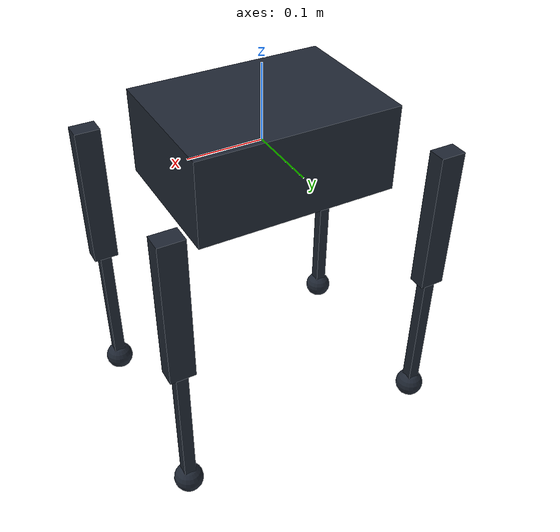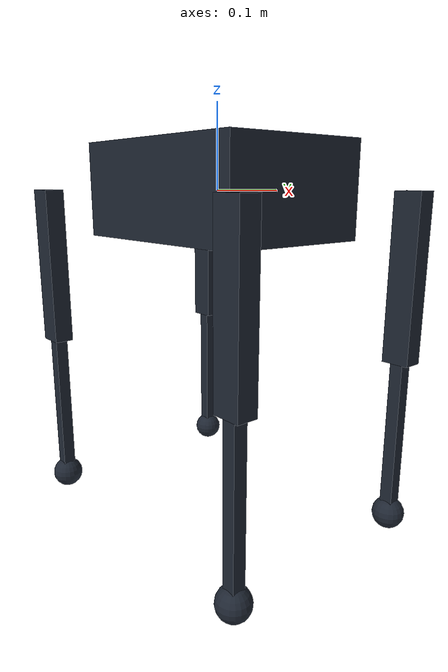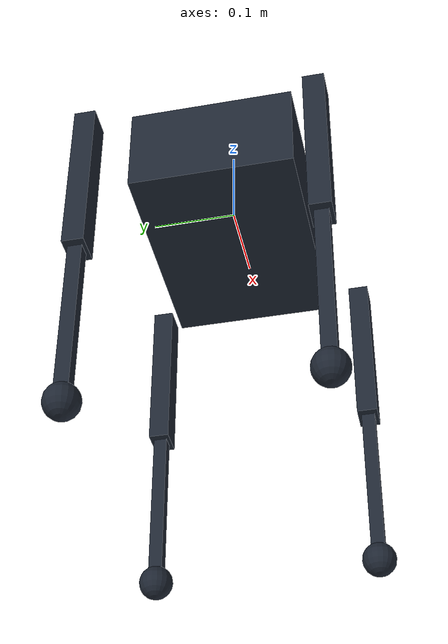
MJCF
<mujoco model="a1_description">
  <compiler angle="radian"/>

  <worldbody>
    <geom size="0.1335 0.097 0.057" type="box" rgba="0.12 0.15 0.2 1"/>
    <body name="FR_hip" pos="0.183 -0.047 0">
      <inertial pos="-0.003311 -0.000635 3.1e-05" quat="0.507528 0.506268 0.491507 0.494499" mass="0.696" diaginertia="0.000807752 0.00055293 0.000468983"/>
      <joint name="FR_hip_joint" pos="0 0 0" axis="1 0 0" range="-0.802851 0.802851" actuatorfrcrange="-20 20"/>
      <body name="FR_thigh" pos="0 -0.08505 0">
        <inertial pos="-0.003237 0.022327 -0.027326" quat="0.999125 -0.00256393 -0.0409531 -0.00806091" mass="1.013" diaginertia="0.00555739 0.00513936 0.00133944"/>
        <joint name="FR_thigh_joint" pos="0 0 0" axis="0 1 0" range="-1.0472 4.18879" actuatorfrcrange="-55 55"/>
        <geom size="0.1 0.01225 0.017" pos="0 0 -0.1" quat="0.707107 0 0.707107 0" type="box" rgba="0.12 0.15 0.2 1"/>
        <body name="FR_calf" pos="0 0 -0.2">
          <inertial pos="0.00472659 0 -0.131975" quat="0.706886 0.017653 0.017653 0.706886" mass="0.226" diaginertia="0.00340344 0.00339393 3.54834e-05"/>
          <joint name="FR_calf_joint" pos="0 0 0" axis="0 1 0" range="-2.69653 -0.916298" actuatorfrcrange="-55 55"/>
          <geom size="0.1 0.008 0.008" pos="0 0 -0.1" quat="0.707107 0 0.707107 0" type="box" rgba="0.12 0.15 0.2 1"/>
          <geom size="0.02" pos="0 0 -0.2" rgba="0.12 0.15 0.2 1"/>
        </body>
      </body>
    </body>
    <body name="FL_hip" pos="0.183 0.047 0">
      <inertial pos="-0.003311 0.000635 3.1e-05" quat="0.494499 0.491507 0.506268 0.507528" mass="0.696" diaginertia="0.000807752 0.00055293 0.000468983"/>
      <joint name="FL_hip_joint" pos="0 0 0" axis="1 0 0" range="-0.802851 0.802851" actuatorfrcrange="-20 20"/>
      <body name="FL_thigh" pos="0 0.08505 0">
        <inertial pos="-0.003237 -0.022327 -0.027326" quat="0.999125 0.00256393 -0.0409531 0.00806091" mass="1.013" diaginertia="0.00555739 0.00513936 0.00133944"/>
        <joint name="FL_thigh_joint" pos="0 0 0" axis="0 1 0" range="-1.0472 4.18879" actuatorfrcrange="-55 55"/>
        <geom size="0.1 0.01225 0.017" pos="0 0 -0.1" quat="0.707107 0 0.707107 0" type="box" rgba="0.12 0.15 0.2 1"/>
        <body name="FL_calf" pos="0 0 -0.2">
          <inertial pos="0.00472659 0 -0.131975" quat="0.706886 0.017653 0.017653 0.706886" mass="0.226" diaginertia="0.00340344 0.00339393 3.54834e-05"/>
          <joint name="FL_calf_joint" pos="0 0 0" axis="0 1 0" range="-2.69653 -0.916298" actuatorfrcrange="-55 55"/>
          <geom size="0.1 0.008 0.008" pos="0 0 -0.1" quat="0.707107 0 0.707107 0" type="box" rgba="0.12 0.15 0.2 1"/>
          <geom size="0.02" pos="0 0 -0.2" rgba="0.12 0.15 0.2 1"/>
        </body>
      </body>
    </body>
    <body name="RR_hip" pos="-0.183 -0.047 0">
      <inertial pos="0.003311 -0.000635 3.1e-05" quat="0.491507 0.494499 0.507528 0.506268" mass="0.696" diaginertia="0.000807752 0.00055293 0.000468983"/>
      <joint name="RR_hip_joint" pos="0 0 0" axis="1 0 0" range="-0.802851 0.802851" actuatorfrcrange="-20 20"/>
      <body name="RR_thigh" pos="0 -0.08505 0">
        <inertial pos="-0.003237 0.022327 -0.027326" quat="0.999125 -0.00256393 -0.0409531 -0.00806091" mass="1.013" diaginertia="0.00555739 0.00513936 0.00133944"/>
        <joint name="RR_thigh_joint" pos="0 0 0" axis="0 1 0" range="-1.0472 4.18879" actuatorfrcrange="-55 55"/>
        <geom size="0.1 0.01225 0.017" pos="0 0 -0.1" quat="0.707107 0 0.707107 0" type="box" rgba="0.12 0.15 0.2 1"/>
        <body name="RR_calf" pos="0 0 -0.2">
          <inertial pos="0.00472659 0 -0.131975" quat="0.706886 0.017653 0.017653 0.706886" mass="0.226" diaginertia="0.00340344 0.00339393 3.54834e-05"/>
          <joint name="RR_calf_joint" pos="0 0 0" axis="0 1 0" range="-2.69653 -0.916298" actuatorfrcrange="-55 55"/>
          <geom size="0.1 0.008 0.008" pos="0 0 -0.1" quat="0.707107 0 0.707107 0" type="box" rgba="0.12 0.15 0.2 1"/>
          <geom size="0.02" pos="0 0 -0.2" rgba="0.12 0.15 0.2 1"/>
        </body>
      </body>
    </body>
    <body name="RL_hip" pos="-0.183 0.047 0">
      <inertial pos="0.003311 0.000635 3.1e-05" quat="0.506268 0.507528 0.494499 0.491507" mass="0.696" diaginertia="0.000807752 0.00055293 0.000468983"/>
      <joint name="RL_hip_joint" pos="0 0 0" axis="1 0 0" range="-0.802851 0.802851" actuatorfrcrange="-20 20"/>
      <body name="RL_thigh" pos="0 0.08505 0">
        <inertial pos="-0.003237 -0.022327 -0.027326" quat="0.999125 0.00256393 -0.0409531 0.00806091" mass="1.013" diaginertia="0.00555739 0.00513936 0.00133944"/>
        <joint name="RL_thigh_joint" pos="0 0 0" axis="0 1 0" range="-1.0472 4.18879" actuatorfrcrange="-55 55"/>
        <geom size="0.1 0.01225 0.017" pos="0 0 -0.1" quat="0.707107 0 0.707107 0" type="box" rgba="0.12 0.15 0.2 1"/>
        <body name="RL_calf" pos="0 0 -0.2">
          <inertial pos="0.00472659 0 -0.131975" quat="0.706886 0.017653 0.017653 0.706886" mass="0.226" diaginertia="0.00340344 0.00339393 3.54834e-05"/>
          <joint name="RL_calf_joint" pos="0 0 0" axis="0 1 0" range="-2.69653 -0.916298" actuatorfrcrange="-55 55"/>
          <geom size="0.1 0.008 0.008" pos="0 0 -0.1" quat="0.707107 0 0.707107 0" type="box" rgba="0.12 0.15 0.2 1"/>
          <geom size="0.02" pos="0 0 -0.2" rgba="0.12 0.15 0.2 1"/>
        </body>
      </body>
    </body>
  </worldbody>
</mujoco>
